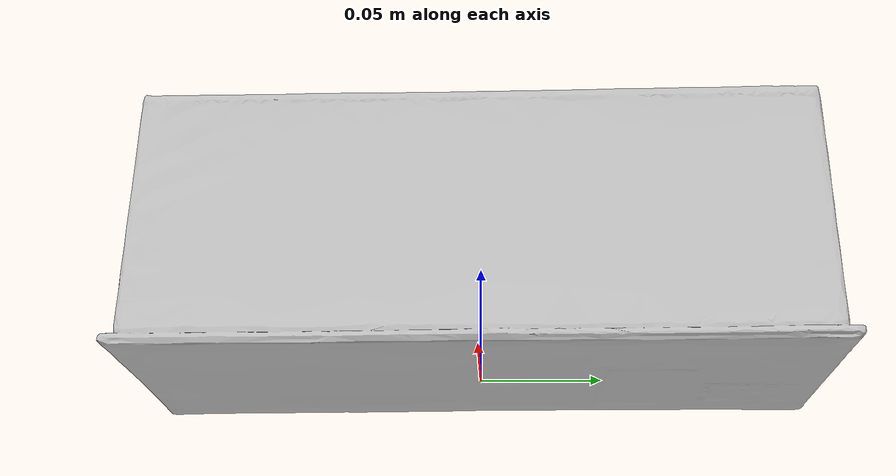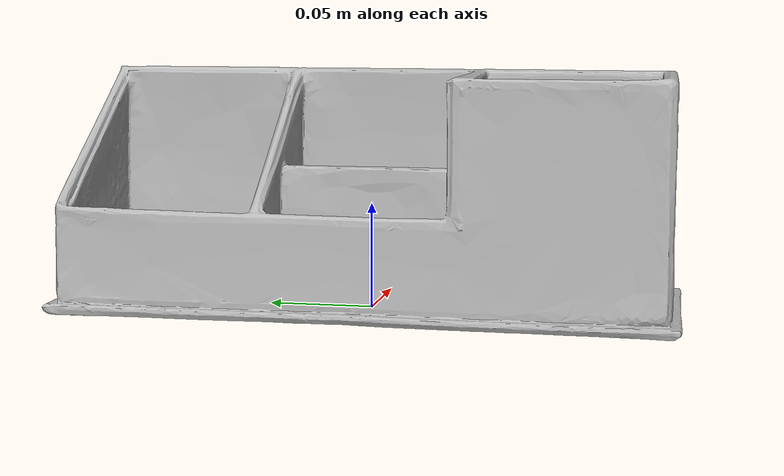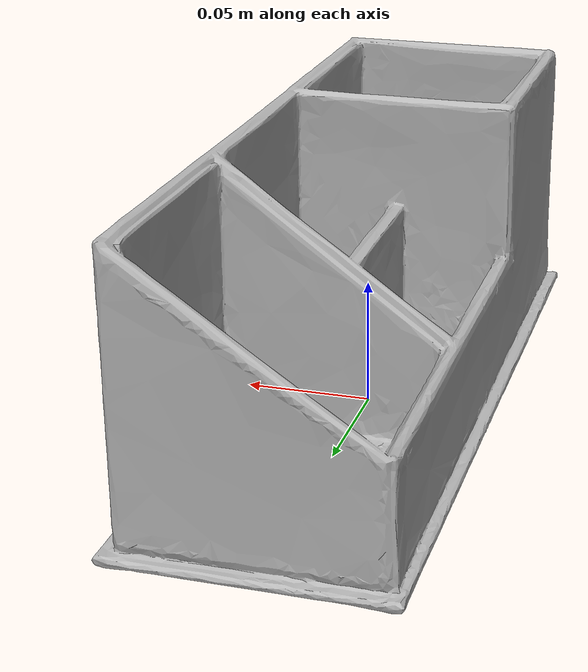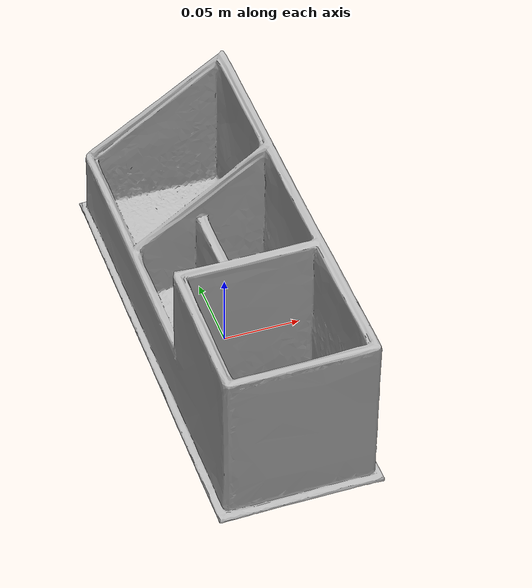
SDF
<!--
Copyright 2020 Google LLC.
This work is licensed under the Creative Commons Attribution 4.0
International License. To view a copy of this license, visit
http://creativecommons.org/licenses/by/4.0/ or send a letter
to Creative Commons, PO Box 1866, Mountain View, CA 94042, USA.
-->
<?xml version="1.0" ?>
<sdf version="1.6">
  <model name="Markings_Desk_Caddy">
    <link name="link_0">
      <visual name="visual">
        <geometry>
          <mesh>
            <uri>meshes/model.obj</uri>
          </mesh>
        </geometry>
      </visual>
      <collision name="collision_0">
        <geometry>
          <mesh>
            <uri>meshes/model.obj</uri>
          </mesh>
        </geometry>
      </collision>
    </link>
  </model>
</sdf>
